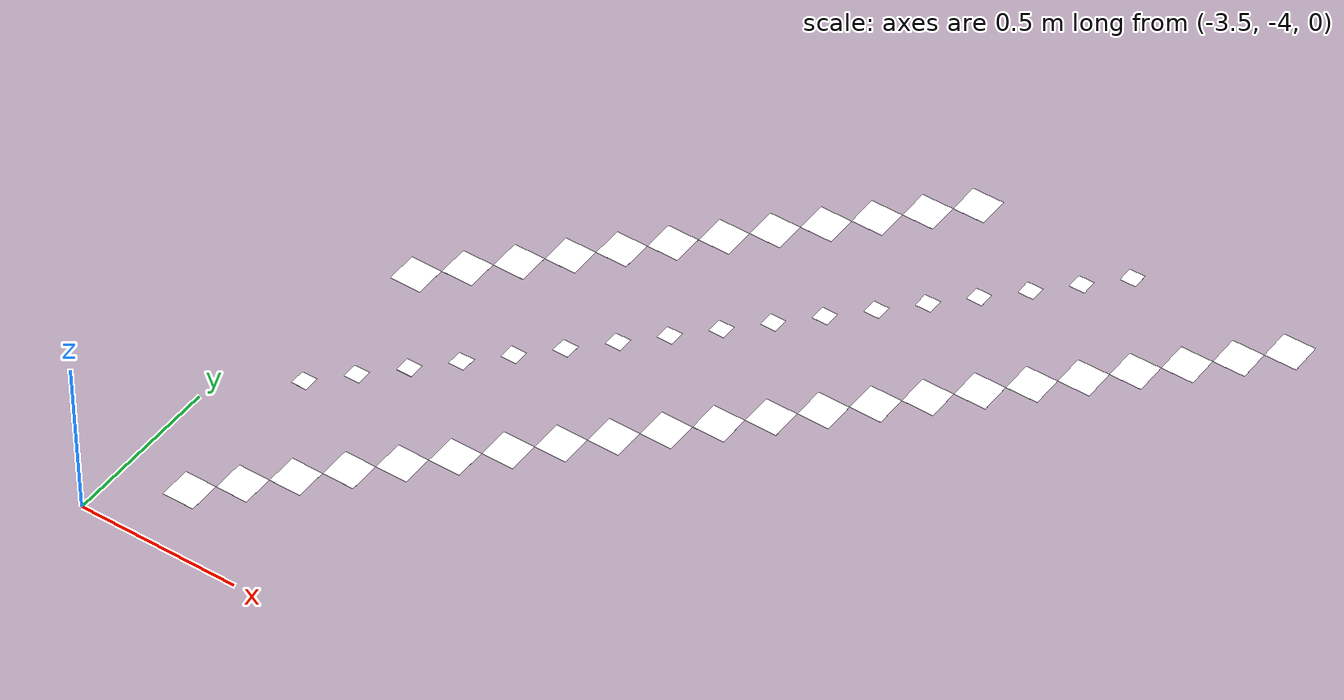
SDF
<sdf version="1.5">
 <model name="AutoNOMOS_mini_intersection">
  <static>true</static>
  <link name="L1_p18">
   <pose>-3.3 -3.3 0.011 0 0 0</pose>
   <visual name="visual_L1_p18">
    <cast_shadows>false</cast_shadows>
    <geometry><plane><normal>0 0 1</normal><size>.05 .05</size></plane></geometry>
    <material>
     <ambient>0 0 0 0</ambient>
     <diffuse>1 1 1 0</diffuse>
     <specular>0 0 0 0</specular>
     <emissive>0 0 0 0</emissive>
    </material>
   </visual>
  </link>
  <link name="L1_p-3.3">
   <pose>-3.3 -2.8 0.011 0 0 0</pose>
   <visual name="visual_L1_p-3.3">
    <cast_shadows>false</cast_shadows>
    <geometry><plane><normal>0 0 1</normal><size>.1 .1</size></plane></geometry>
    <material>
     <ambient>0 0 0 0</ambient>
     <diffuse>1 1 1 0</diffuse>
     <specular>0 0 0 0</specular>
     <emissive>0 0 0 0</emissive>
    </material>
   </visual>
  </link>
  <link name="L1_p-2.8">
   <pose>-3.3 -3.8 0.011 0 0 0</pose>
   <visual name="visual_L1_p-2.8">
    <cast_shadows>false</cast_shadows>
    <geometry><plane><normal>0 0 1</normal><size>.1 .1</size></plane></geometry>
    <material>
     <ambient>0 0 0 0</ambient>
     <diffuse>1 1 1 0</diffuse>
     <specular>0 0 0 0</specular>
     <emissive>0 0 0 0</emissive>
    </material>
   </visual>
  </link>
  <link name="L1_p19">
   <pose>-3.2 -3.2 0.011 0 0 0</pose>
   <visual name="visual_L1_p19">
    <cast_shadows>false</cast_shadows>
    <geometry><plane><normal>0 0 1</normal><size>.05 .05</size></plane></geometry>
    <material>
     <ambient>0 0 0 0</ambient>
     <diffuse>1 1 1 0</diffuse>
     <specular>0 0 0 0</specular>
     <emissive>0 0 0 0</emissive>
    </material>
   </visual>
  </link>
  <link name="L1_p-3.2">
   <pose>-3.2 -2.7 0.011 0 0 0</pose>
   <visual name="visual_L1_p-3.2">
    <cast_shadows>false</cast_shadows>
    <geometry><plane><normal>0 0 1</normal><size>.1 .1</size></plane></geometry>
    <material>
     <ambient>0 0 0 0</ambient>
     <diffuse>1 1 1 0</diffuse>
     <specular>0 0 0 0</specular>
     <emissive>0 0 0 0</emissive>
    </material>
   </visual>
  </link>
  <link name="L1_p-2.7">
   <pose>-3.2 -3.7 0.011 0 0 0</pose>
   <visual name="visual_L1_p-2.7">
    <cast_shadows>false</cast_shadows>
    <geometry><plane><normal>0 0 1</normal><size>.1 .1</size></plane></geometry>
    <material>
     <ambient>0 0 0 0</ambient>
     <diffuse>1 1 1 0</diffuse>
     <specular>0 0 0 0</specular>
     <emissive>0 0 0 0</emissive>
    </material>
   </visual>
  </link>
  <link name="L1_p20">
   <pose>-3.1 -3.1 0.011 0 0 0</pose>
   <visual name="visual_L1_p20">
    <cast_shadows>false</cast_shadows>
    <geometry><plane><normal>0 0 1</normal><size>.05 .05</size></plane></geometry>
    <material>
     <ambient>0 0 0 0</ambient>
     <diffuse>1 1 1 0</diffuse>
     <specular>0 0 0 0</specular>
     <emissive>0 0 0 0</emissive>
    </material>
   </visual>
  </link>
  <link name="L1_p-3.1">
   <pose>-3.1 -2.6 0.011 0 0 0</pose>
   <visual name="visual_L1_p-3.1">
    <cast_shadows>false</cast_shadows>
    <geometry><plane><normal>0 0 1</normal><size>.1 .1</size></plane></geometry>
    <material>
     <ambient>0 0 0 0</ambient>
     <diffuse>1 1 1 0</diffuse>
     <specular>0 0 0 0</specular>
     <emissive>0 0 0 0</emissive>
    </material>
   </visual>
  </link>
  <link name="L1_p-2.6">
   <pose>-3.1 -3.6 0.011 0 0 0</pose>
   <visual name="visual_L1_p-2.6">
    <cast_shadows>false</cast_shadows>
    <geometry><plane><normal>0 0 1</normal><size>.1 .1</size></plane></geometry>
    <material>
     <ambient>0 0 0 0</ambient>
     <diffuse>1 1 1 0</diffuse>
     <specular>0 0 0 0</specular>
     <emissive>0 0 0 0</emissive>
    </material>
   </visual>
  </link>
  <link name="L1_p21">
   <pose>-3 -3 0.011 0 0 0</pose>
   <visual name="visual_L1_p21">
    <cast_shadows>false</cast_shadows>
    <geometry><plane><normal>0 0 1</normal><size>.05 .05</size></plane></geometry>
    <material>
     <ambient>0 0 0 0</ambient>
     <diffuse>1 1 1 0</diffuse>
     <specular>0 0 0 0</specular>
     <emissive>0 0 0 0</emissive>
    </material>
   </visual>
  </link>
  <link name="L1_p-3.">
   <pose>-3 -2.5 0.011 0 0 0</pose>
   <visual name="visual_L1_p-3.">
    <cast_shadows>false</cast_shadows>
    <geometry><plane><normal>0 0 1</normal><size>.1 .1</size></plane></geometry>
    <material>
     <ambient>0 0 0 0</ambient>
     <diffuse>1 1 1 0</diffuse>
     <specular>0 0 0 0</specular>
     <emissive>0 0 0 0</emissive>
    </material>
   </visual>
  </link>
  <link name="L1_p-2.5">
   <pose>-3 -3.5 0.011 0 0 0</pose>
   <visual name="visual_L1_p-2.5">
    <cast_shadows>false</cast_shadows>
    <geometry><plane><normal>0 0 1</normal><size>.1 .1</size></plane></geometry>
    <material>
     <ambient>0 0 0 0</ambient>
     <diffuse>1 1 1 0</diffuse>
     <specular>0 0 0 0</specular>
     <emissive>0 0 0 0</emissive>
    </material>
   </visual>
  </link>
  <link name="L1_p22">
   <pose>-2.9 -2.9 0.011 0 0 0</pose>
   <visual name="visual_L1_p22">
    <cast_shadows>false</cast_shadows>
    <geometry><plane><normal>0 0 1</normal><size>.05 .05</size></plane></geometry>
    <material>
     <ambient>0 0 0 0</ambient>
     <diffuse>1 1 1 0</diffuse>
     <specular>0 0 0 0</specular>
     <emissive>0 0 0 0</emissive>
    </material>
   </visual>
  </link>
  <link name="L1_p-2.9">
   <pose>-2.9 -2.4 0.011 0 0 0</pose>
   <visual name="visual_L1_p-2.9">
    <cast_shadows>false</cast_shadows>
    <geometry><plane><normal>0 0 1</normal><size>.1 .1</size></plane></geometry>
    <material>
     <ambient>0 0 0 0</ambient>
     <diffuse>1 1 1 0</diffuse>
     <specular>0 0 0 0</specular>
     <emissive>0 0 0 0</emissive>
    </material>
   </visual>
  </link>
  <link name="L1_p-2.4">
   <pose>-2.9 -3.4 0.011 0 0 0</pose>
   <visual name="visual_L1_p-2.4">
    <cast_shadows>false</cast_shadows>
    <geometry><plane><normal>0 0 1</normal><size>.1 .1</size></plane></geometry>
    <material>
     <ambient>0 0 0 0</ambient>
     <diffuse>1 1 1 0</diffuse>
     <specular>0 0 0 0</specular>
     <emissive>0 0 0 0</emissive>
    </material>
   </visual>
  </link>
  <link name="L1_p23">
   <pose>-2.8 -2.8 0.011 0 0 0</pose>
   <visual name="visual_L1_p23">
    <cast_shadows>false</cast_shadows>
    <geometry><plane><normal>0 0 1</normal><size>.05 .05</size></plane></geometry>
    <material>
     <ambient>0 0 0 0</ambient>
     <diffuse>1 1 1 0</diffuse>
     <specular>0 0 0 0</specular>
     <emissive>0 0 0 0</emissive>
    </material>
   </visual>
  </link>
  <link name="L1_p-2.8">
   <pose>-2.8 -2.3 0.011 0 0 0</pose>
   <visual name="visual_L1_p-2.8">
    <cast_shadows>false</cast_shadows>
    <geometry><plane><normal>0 0 1</normal><size>.1 .1</size></plane></geometry>
    <material>
     <ambient>0 0 0 0</ambient>
     <diffuse>1 1 1 0</diffuse>
     <specular>0 0 0 0</specular>
     <emissive>0 0 0 0</emissive>
    </material>
   </visual>
  </link>
  <link name="L1_p-2.3">
   <pose>-2.8 -3.3 0.011 0 0 0</pose>
   <visual name="visual_L1_p-2.3">
    <cast_shadows>false</cast_shadows>
    <geometry><plane><normal>0 0 1</normal><size>.1 .1</size></plane></geometry>
    <material>
     <ambient>0 0 0 0</ambient>
     <diffuse>1 1 1 0</diffuse>
     <specular>0 0 0 0</specular>
     <emissive>0 0 0 0</emissive>
    </material>
   </visual>
  </link>
  <link name="L1_p24">
   <pose>-2.7 -2.7 0.011 0 0 0</pose>
   <visual name="visual_L1_p24">
    <cast_shadows>false</cast_shadows>
    <geometry><plane><normal>0 0 1</normal><size>.05 .05</size></plane></geometry>
    <material>
     <ambient>0 0 0 0</ambient>
     <diffuse>1 1 1 0</diffuse>
     <specular>0 0 0 0</specular>
     <emissive>0 0 0 0</emissive>
    </material>
   </visual>
  </link>
  <link name="L1_p-2.7">
   <pose>-2.7 -2.2 0.011 0 0 0</pose>
   <visual name="visual_L1_p-2.7">
    <cast_shadows>false</cast_shadows>
    <geometry><plane><normal>0 0 1</normal><size>.1 .1</size></plane></geometry>
    <material>
     <ambient>0 0 0 0</ambient>
     <diffuse>1 1 1 0</diffuse>
     <specular>0 0 0 0</specular>
     <emissive>0 0 0 0</emissive>
    </material>
   </visual>
  </link>
  <link name="L1_p-2.2">
   <pose>-2.7 -3.2 0.011 0 0 0</pose>
   <visual name="visual_L1_p-2.2">
    <cast_shadows>false</cast_shadows>
    <geometry><plane><normal>0 0 1</normal><size>.1 .1</size></plane></geometry>
    <material>
     <ambient>0 0 0 0</ambient>
     <diffuse>1 1 1 0</diffuse>
     <specular>0 0 0 0</specular>
     <emissive>0 0 0 0</emissive>
    </material>
   </visual>
  </link>
  <link name="L1_p25">
   <pose>-2.6 -2.6 0.011 0 0 0</pose>
   <visual name="visual_L1_p25">
    <cast_shadows>false</cast_shadows>
    <geometry><plane><normal>0 0 1</normal><size>.05 .05</size></plane></geometry>
    <material>
     <ambient>0 0 0 0</ambient>
     <diffuse>1 1 1 0</diffuse>
     <specular>0 0 0 0</specular>
     <emissive>0 0 0 0</emissive>
    </material>
   </visual>
  </link>
  <link name="L1_p-2.6">
   <pose>-2.6 -2.1 0.011 0 0 0</pose>
   <visual name="visual_L1_p-2.6">
    <cast_shadows>false</cast_shadows>
    <geometry><plane><normal>0 0 1</normal><size>.1 .1</size></plane></geometry>
    <material>
     <ambient>0 0 0 0</ambient>
     <diffuse>1 1 1 0</diffuse>
     <specular>0 0 0 0</specular>
     <emissive>0 0 0 0</emissive>
    </material>
   </visual>
  </link>
  <link name="L1_p-2.1">
   <pose>-2.6 -3.1 0.011 0 0 0</pose>
   <visual name="visual_L1_p-2.1">
    <cast_shadows>false</cast_shadows>
    <geometry><plane><normal>0 0 1</normal><size>.1 .1</size></plane></geometry>
    <material>
     <ambient>0 0 0 0</ambient>
     <diffuse>1 1 1 0</diffuse>
     <specular>0 0 0 0</specular>
     <emissive>0 0 0 0</emissive>
    </material>
   </visual>
  </link>
  <link name="L1_p26">
   <pose>-2.5 -2.5 0.011 0 0 0</pose>
   <visual name="visual_L1_p26">
    <cast_shadows>false</cast_shadows>
    <geometry><plane><normal>0 0 1</normal><size>.05 .05</size></plane></geometry>
    <material>
     <ambient>0 0 0 0</ambient>
     <diffuse>1 1 1 0</diffuse>
     <specular>0 0 0 0</specular>
     <emissive>0 0 0 0</emissive>
    </material>
   </visual>
  </link>
  <link name="L1_p-2.5">
   <pose>-2.5 -2 0.011 0 0 0</pose>
   <visual name="visual_L1_p-2.5">
    <cast_shadows>false</cast_shadows>
    <geometry><plane><normal>0 0 1</normal><size>.1 .1</size></plane></geometry>
    <material>
     <ambient>0 0 0 0</ambient>
     <diffuse>1 1 1 0</diffuse>
     <specular>0 0 0 0</specular>
     <emissive>0 0 0 0</emissive>
    </material>
   </visual>
  </link>
  <link name="L1_p-2.">
   <pose>-2.5 -3 0.011 0 0 0</pose>
   <visual name="visual_L1_p-2.">
    <cast_shadows>false</cast_shadows>
    <geometry><plane><normal>0 0 1</normal><size>.1 .1</size></plane></geometry>
    <material>
     <ambient>0 0 0 0</ambient>
     <diffuse>1 1 1 0</diffuse>
     <specular>0 0 0 0</specular>
     <emissive>0 0 0 0</emissive>
    </material>
   </visual>
  </link>
  <link name="L1_p27">
   <pose>-2.4 -2.4 0.011 0 0 0</pose>
   <visual name="visual_L1_p27">
    <cast_shadows>false</cast_shadows>
    <geometry><plane><normal>0 0 1</normal><size>.05 .05</size></plane></geometry>
    <material>
     <ambient>0 0 0 0</ambient>
     <diffuse>1 1 1 0</diffuse>
     <specular>0 0 0 0</specular>
     <emissive>0 0 0 0</emissive>
    </material>
   </visual>
  </link>
  <link name="L1_p-2.4">
   <pose>-2.4 -1.9 0.011 0 0 0</pose>
   <visual name="visual_L1_p-2.4">
    <cast_shadows>false</cast_shadows>
    <geometry><plane><normal>0 0 1</normal><size>.1 .1</size></plane></geometry>
    <material>
     <ambient>0 0 0 0</ambient>
     <diffuse>1 1 1 0</diffuse>
     <specular>0 0 0 0</specular>
     <emissive>0 0 0 0</emissive>
    </material>
   </visual>
  </link>
  <link name="L1_p-1.9">
   <pose>-2.4 -2.9 0.011 0 0 0</pose>
   <visual name="visual_L1_p-1.9">
    <cast_shadows>false</cast_shadows>
    <geometry><plane><normal>0 0 1</normal><size>.1 .1</size></plane></geometry>
    <material>
     <ambient>0 0 0 0</ambient>
     <diffuse>1 1 1 0</diffuse>
     <specular>0 0 0 0</specular>
     <emissive>0 0 0 0</emissive>
    </material>
   </visual>
  </link>
  <link name="L1_p28">
   <pose>-2.3 -2.3 0.011 0 0 0</pose>
   <visual name="visual_L1_p28">
    <cast_shadows>false</cast_shadows>
    <geometry><plane><normal>0 0 1</normal><size>.05 .05</size></plane></geometry>
    <material>
     <ambient>0 0 0 0</ambient>
     <diffuse>1 1 1 0</diffuse>
     <specular>0 0 0 0</specular>
     <emissive>0 0 0 0</emissive>
    </material>
   </visual>
  </link>
  <link name="L1_p-2.3">
   <pose>-2.3 -1.8 0.011 0 0 0</pose>
   <visual name="visual_L1_p-2.3">
    <cast_shadows>false</cast_shadows>
    <geometry><plane><normal>0 0 1</normal><size>.1 .1</size></plane></geometry>
    <material>
     <ambient>0 0 0 0</ambient>
     <diffuse>1 1 1 0</diffuse>
     <specular>0 0 0 0</specular>
     <emissive>0 0 0 0</emissive>
    </material>
   </visual>
  </link>
  <link name="L1_p-1.8">
   <pose>-2.3 -2.8 0.011 0 0 0</pose>
   <visual name="visual_L1_p-1.8">
    <cast_shadows>false</cast_shadows>
    <geometry><plane><normal>0 0 1</normal><size>.1 .1</size></plane></geometry>
    <material>
     <ambient>0 0 0 0</ambient>
     <diffuse>1 1 1 0</diffuse>
     <specular>0 0 0 0</specular>
     <emissive>0 0 0 0</emissive>
    </material>
   </visual>
  </link>
  <link name="L1_p29">
   <pose>-2.2 -2.2 0.011 0 0 0</pose>
   <visual name="visual_L1_p29">
    <cast_shadows>false</cast_shadows>
    <geometry><plane><normal>0 0 1</normal><size>.05 .05</size></plane></geometry>
    <material>
     <ambient>0 0 0 0</ambient>
     <diffuse>1 1 1 0</diffuse>
     <specular>0 0 0 0</specular>
     <emissive>0 0 0 0</emissive>
    </material>
   </visual>
  </link>
  <link name="L1_p-2.2">
   <pose>-2.2 -1.7 0.011 0 0 0</pose>
   <visual name="visual_L1_p-2.2">
    <cast_shadows>false</cast_shadows>
    <geometry><plane><normal>0 0 1</normal><size>.1 .1</size></plane></geometry>
    <material>
     <ambient>0 0 0 0</ambient>
     <diffuse>1 1 1 0</diffuse>
     <specular>0 0 0 0</specular>
     <emissive>0 0 0 0</emissive>
    </material>
   </visual>
  </link>
  <link name="L1_p-1.7">
   <pose>-2.2 -2.7 0.011 0 0 0</pose>
   <visual name="visual_L1_p-1.7">
    <cast_shadows>false</cast_shadows>
    <geometry><plane><normal>0 0 1</normal><size>.1 .1</size></plane></geometry>
    <material>
     <ambient>0 0 0 0</ambient>
     <diffuse>1 1 1 0</diffuse>
     <specular>0 0 0 0</specular>
     <emissive>0 0 0 0</emissive>
    </material>
   </visual>
  </link>
  <link name="L1_p30">
   <pose>-2.1 -2.1 0.011 0 0 0</pose>
   <visual name="visual_L1_p30">
    <cast_shadows>false</cast_shadows>
    <geometry><plane><normal>0 0 1</normal><size>.05 .05</size></plane></geometry>
    <material>
     <ambient>0 0 0 0</ambient>
     <diffuse>1 1 1 0</diffuse>
     <specular>0 0 0 0</specular>
     <emissive>0 0 0 0</emissive>
    </material>
   </visual>
  </link>
  <link name="L1_p-1.6">
   <pose>-2.1 -2.6 0.011 0 0 0</pose>
   <visual name="visual_L1_p-1.6">
    <cast_shadows>false</cast_shadows>
    <geometry><plane><normal>0 0 1</normal><size>.1 .1</size></plane></geometry>
    <material>
     <ambient>0 0 0 0</ambient>
     <diffuse>1 1 1 0</diffuse>
     <specular>0 0 0 0</specular>
     <emissive>0 0 0 0</emissive>
    </material>
   </visual>
  </link>
  <link name="L1_p31">
   <pose>-2 -2 0.011 0 0 0</pose>
   <visual name="visual_L1_p31">
    <cast_shadows>false</cast_shadows>
    <geometry><plane><normal>0 0 1</normal><size>.05 .05</size></plane></geometry>
    <material>
     <ambient>0 0 0 0</ambient>
     <diffuse>1 1 1 0</diffuse>
     <specular>0 0 0 0</specular>
     <emissive>0 0 0 0</emissive>
    </material>
   </visual>
  </link>
  <link name="L1_p-1.5">
   <pose>-2 -2.5 0.011 0 0 0</pose>
   <visual name="visual_L1_p-1.5">
    <cast_shadows>false</cast_shadows>
    <geometry><plane><normal>0 0 1</normal><size>.1 .1</size></plane></geometry>
    <material>
     <ambient>0 0 0 0</ambient>
     <diffuse>1 1 1 0</diffuse>
     <specular>0 0 0 0</specular>
     <emissive>0 0 0 0</emissive>
    </material>
   </visual>
  </link>
  <link name="L1_p32">
   <pose>-1.9 -1.9 0.011 0 0 0</pose>
   <visual name="visual_L1_p32">
    <cast_shadows>false</cast_shadows>
    <geometry><plane><normal>0 0 1</normal><size>.05 .05</size></plane></geometry>
    <material>
     <ambient>0 0 0 0</ambient>
     <diffuse>1 1 1 0</diffuse>
     <specular>0 0 0 0</specular>
     <emissive>0 0 0 0</emissive>
    </material>
   </visual>
  </link>
  <link name="L1_p-1.4">
   <pose>-1.9 -2.4 0.011 0 0 0</pose>
   <visual name="visual_L1_p-1.4">
    <cast_shadows>false</cast_shadows>
    <geometry><plane><normal>0 0 1</normal><size>.1 .1</size></plane></geometry>
    <material>
     <ambient>0 0 0 0</ambient>
     <diffuse>1 1 1 0</diffuse>
     <specular>0 0 0 0</specular>
     <emissive>0 0 0 0</emissive>
    </material>
   </visual>
  </link>
  <link name="L1_p33">
   <pose>-1.8 -1.8 0.011 0 0 0</pose>
   <visual name="visual_L1_p33">
    <cast_shadows>false</cast_shadows>
    <geometry><plane><normal>0 0 1</normal><size>.05 .05</size></plane></geometry>
    <material>
     <ambient>0 0 0 0</ambient>
     <diffuse>1 1 1 0</diffuse>
     <specular>0 0 0 0</specular>
     <emissive>0 0 0 0</emissive>
    </material>
   </visual>
  </link>
  <link name="L1_p-1.3">
   <pose>-1.8 -2.3 0.011 0 0 0</pose>
   <visual name="visual_L1_p-1.3">
    <cast_shadows>false</cast_shadows>
    <geometry><plane><normal>0 0 1</normal><size>.1 .1</size></plane></geometry>
    <material>
     <ambient>0 0 0 0</ambient>
     <diffuse>1 1 1 0</diffuse>
     <specular>0 0 0 0</specular>
     <emissive>0 0 0 0</emissive>
    </material>
   </visual>
  </link>
  <link name="L1_p34">
   <pose>-1.7 -1.7 0.011 0 0 0</pose>
   <visual name="visual_L1_p34">
    <cast_shadows>false</cast_shadows>
    <geometry><plane><normal>0 0 1</normal><size>.05 .05</size></plane></geometry>
    <material>
     <ambient>0 0 0 0</ambient>
     <diffuse>1 1 1 0</diffuse>
     <specular>0 0 0 0</specular>
     <emissive>0 0 0 0</emissive>
    </material>
   </visual>
  </link>
  <link name="L1_p-1.2">
   <pose>-1.7 -2.2 0.011 0 0 0</pose>
   <visual name="visual_L1_p-1.2">
    <cast_shadows>false</cast_shadows>
    <geometry><plane><normal>0 0 1</normal><size>.1 .1</size></plane></geometry>
    <material>
     <ambient>0 0 0 0</ambient>
     <diffuse>1 1 1 0</diffuse>
     <specular>0 0 0 0</specular>
     <emissive>0 0 0 0</emissive>
    </material>
   </visual>
  </link>
  <link name="L1_p-1.1">
   <pose>-1.6 -2.1 0.011 0 0 0</pose>
   <visual name="visual_L1_p-1.1">
    <cast_shadows>false</cast_shadows>
    <geometry><plane><normal>0 0 1</normal><size>.1 .1</size></plane></geometry>
    <material>
     <ambient>0 0 0 0</ambient>
     <diffuse>1 1 1 0</diffuse>
     <specular>0 0 0 0</specular>
     <emissive>0 0 0 0</emissive>
    </material>
   </visual>
  </link>
  <link name="L1_p-1.">
   <pose>-1.5 -2 0.011 0 0 0</pose>
   <visual name="visual_L1_p-1.">
    <cast_shadows>false</cast_shadows>
    <geometry><plane><normal>0 0 1</normal><size>.1 .1</size></plane></geometry>
    <material>
     <ambient>0 0 0 0</ambient>
     <diffuse>1 1 1 0</diffuse>
     <specular>0 0 0 0</specular>
     <emissive>0 0 0 0</emissive>
    </material>
   </visual>
  </link>
  <link name="L1_p-0.900000000000001">
   <pose>-1.4 -1.9 0.011 0 0 0</pose>
   <visual name="visual_L1_p-0.900000000000001">
    <cast_shadows>false</cast_shadows>
    <geometry><plane><normal>0 0 1</normal><size>.1 .1</size></plane></geometry>
    <material>
     <ambient>0 0 0 0</ambient>
     <diffuse>1 1 1 0</diffuse>
     <specular>0 0 0 0</specular>
     <emissive>0 0 0 0</emissive>
    </material>
   </visual>
  </link>
  <link name="L1_p-0.800000000000001">
   <pose>-1.3 -1.8 0.011 0 0 0</pose>
   <visual name="visual_L1_p-0.800000000000001">
    <cast_shadows>false</cast_shadows>
    <geometry><plane><normal>0 0 1</normal><size>.1 .1</size></plane></geometry>
    <material>
     <ambient>0 0 0 0</ambient>
     <diffuse>1 1 1 0</diffuse>
     <specular>0 0 0 0</specular>
     <emissive>0 0 0 0</emissive>
    </material>
   </visual>
  </link>
  <link name="L1_p-0.700000000000001">
   <pose>-1.2 -1.7 0.011 0 0 0</pose>
   <visual name="visual_L1_p-0.700000000000001">
    <cast_shadows>false</cast_shadows>
    <geometry><plane><normal>0 0 1</normal><size>.1 .1</size></plane></geometry>
    <material>
     <ambient>0 0 0 0</ambient>
     <diffuse>1 1 1 0</diffuse>
     <specular>0 0 0 0</specular>
     <emissive>0 0 0 0</emissive>
    </material>
   </visual>
  </link>
 </model>
</sdf>
